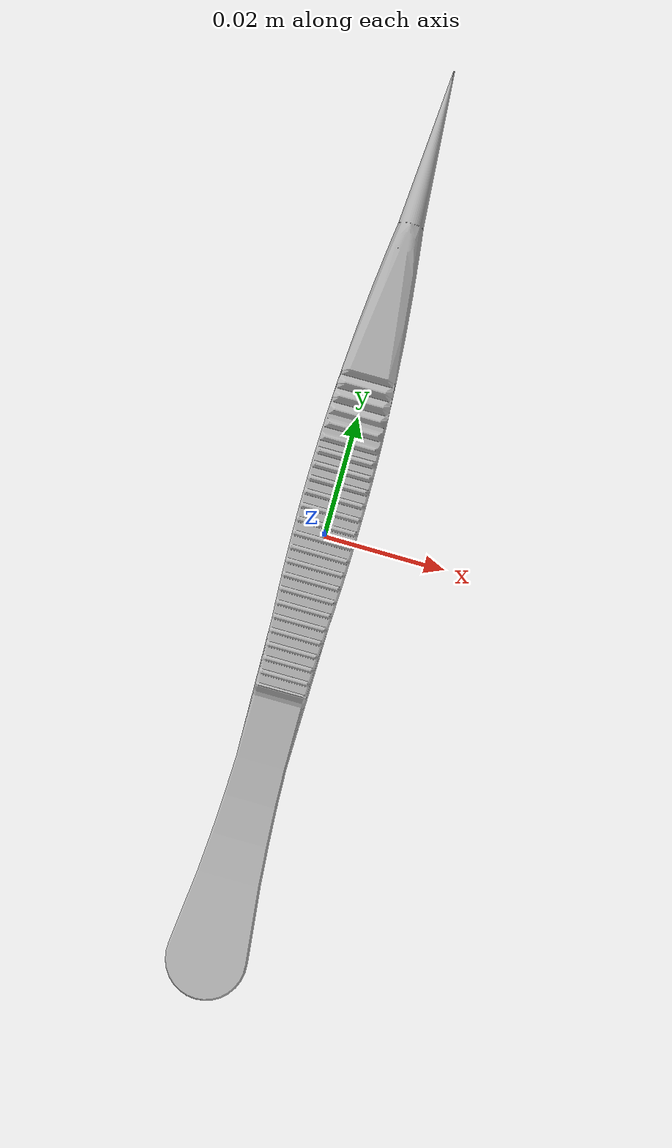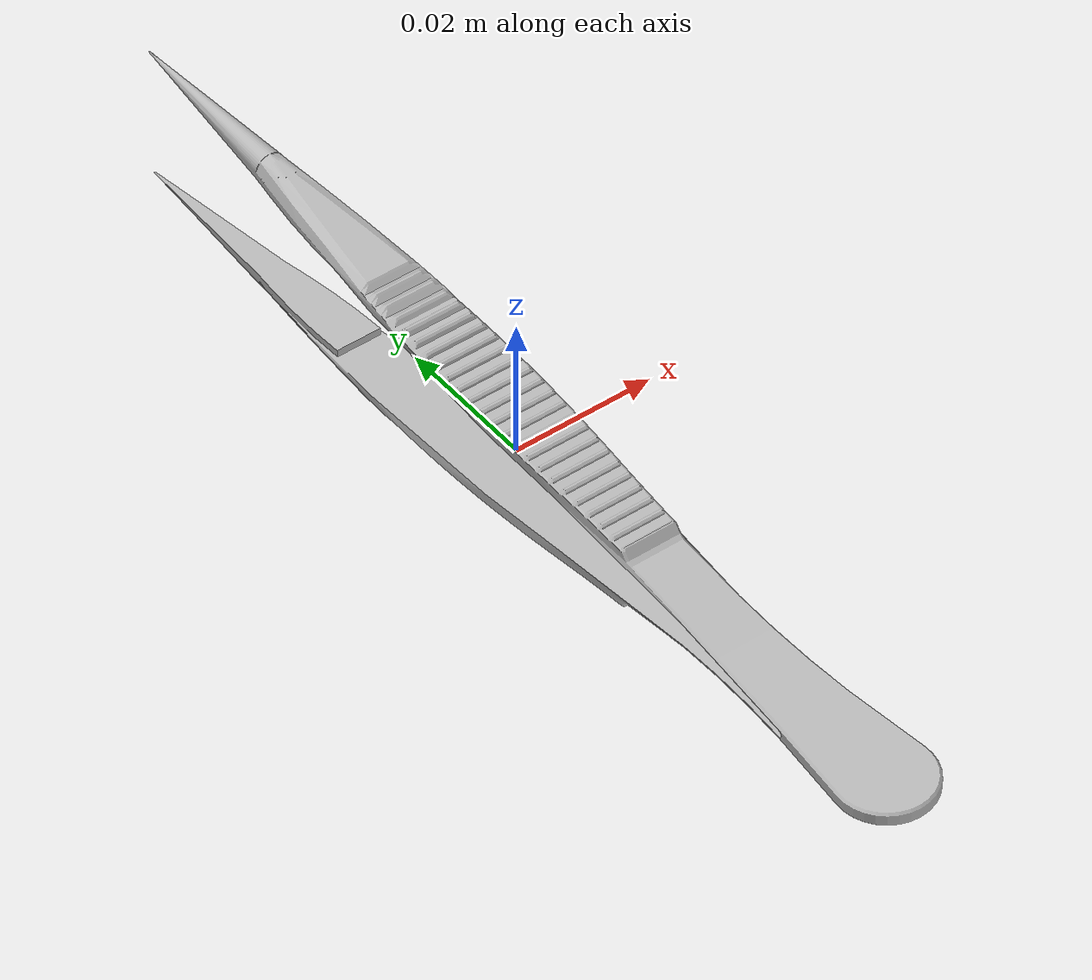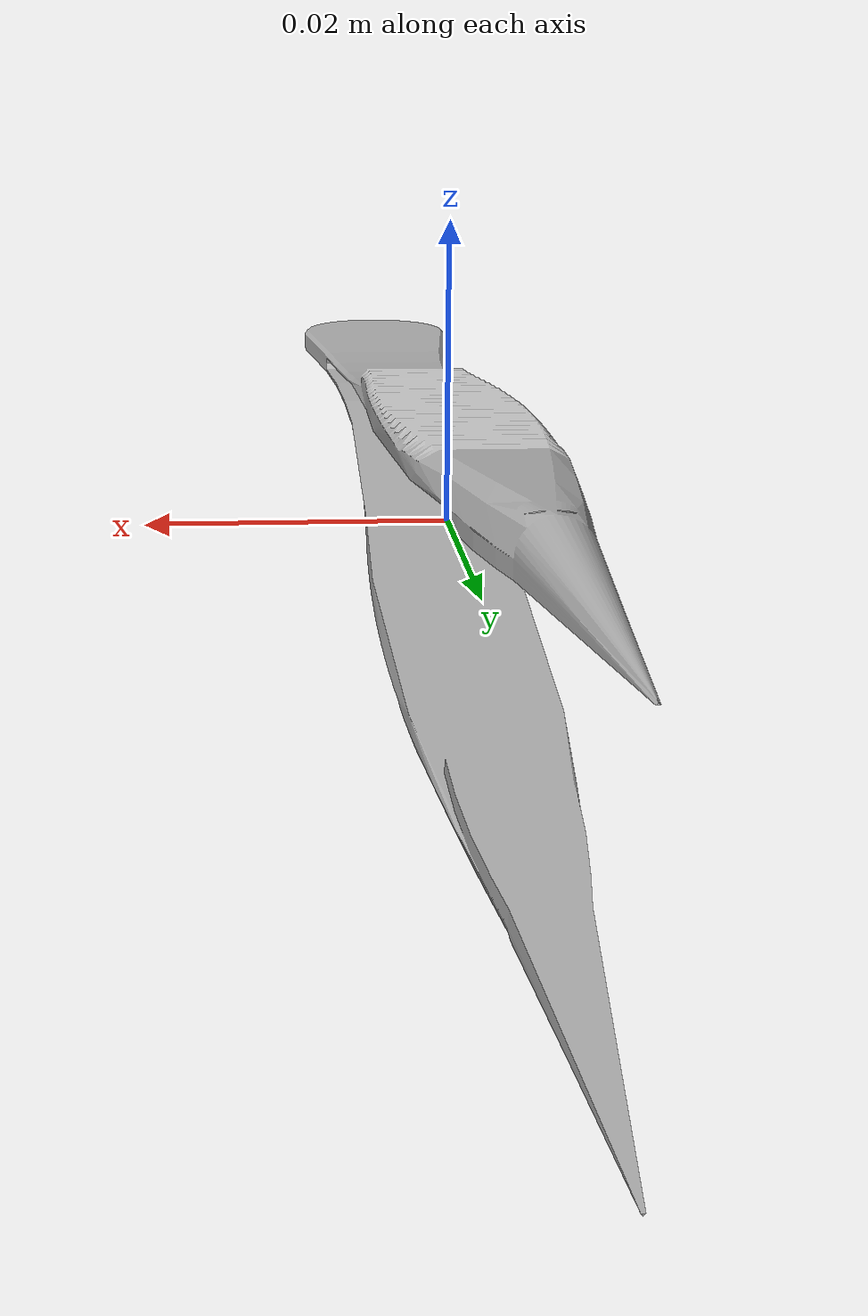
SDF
<?xml version='1.0' ?>
<sdf version="1.6">
    <model name="tweezer">
        <static>false</static>
        <link name="link">
            <collision name="collision">
                <pose>0 0 0.001 1.5708 0 1.5708</pose>
                <geometry>
                    <mesh>
                        <uri>meshes/o_tweezers_part_v3.obj</uri>
                    </mesh>
                </geometry>
            </collision>
            <visual name="visual">
                <pose>0 0 0.001 1.5708 0 1.5708</pose>
                <geometry>
                    <mesh>
                        <uri>meshes/o_tweezers_part_v3.obj</uri>
                    </mesh>
                </geometry>
            </visual>
        </link>
    </model>
</sdf>
